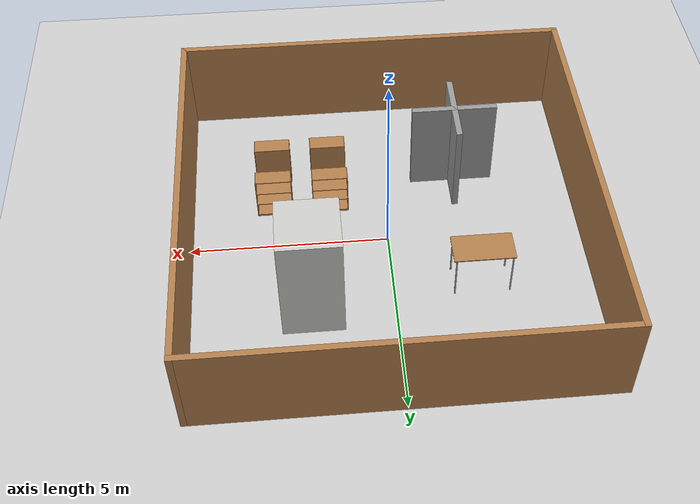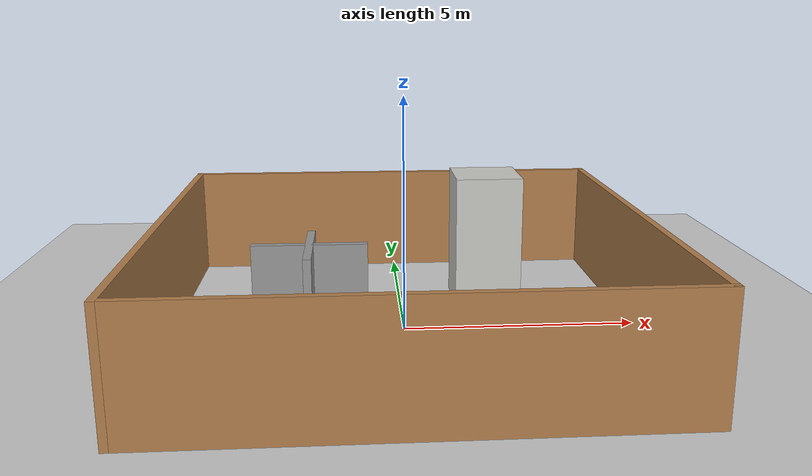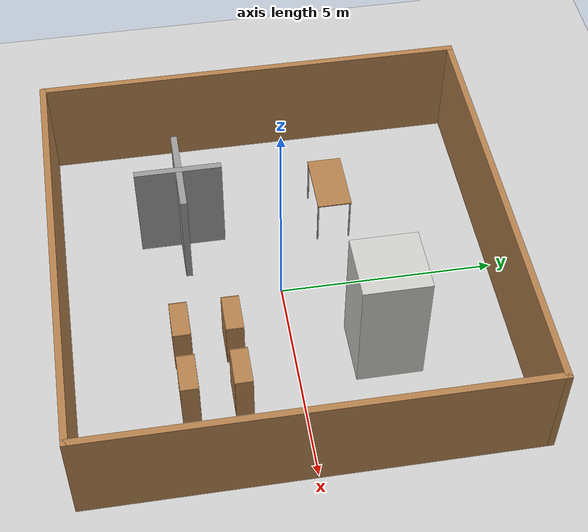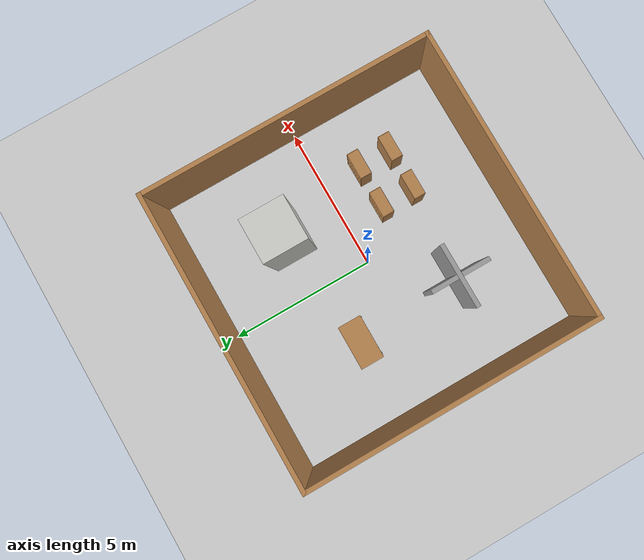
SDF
<sdf version="1.7">
 <world name="default">
  <light name="sun" type="directional">
   <pose>0 0 10 0 -0 0</pose>
   <diffuse>0.8 0.8 0.8 1</diffuse>
   <specular>0.2 0.2 0.2 1</specular>
   <attenuation>
    <range>1000</range>
    <constant>0.9</constant>
    <linear>0.01</linear>
    <quadratic>0.001</quadratic>
   </attenuation>
   <direction>-0.5 0.1 -0.9</direction>
   <spot><inner_angle>0</inner_angle><outer_angle>0</outer_angle><falloff>0</falloff></spot>
  </light>
  <model name="ground_plane">
   <static>1</static>
   <link name="link">
    <collision name="collision">
     <geometry><plane><normal>0 0 1</normal><size>100 100</size></plane></geometry>
     <surface><friction><ode><mu>100</mu><mu2>50</mu2></ode></friction></surface>
    </collision>
    <visual name="visual">
     <cast_shadows>0</cast_shadows>
     <geometry><plane><normal>0 0 1</normal><size>100 100</size></plane></geometry>
     <material>
      <script><uri>file://media/materials/scripts/gazebo.material</uri><name>Gazebo/Grey</name></script>
     </material>
    </visual>
   </link>
  </model>
  <gravity>0 0 -9.8</gravity>
  <magnetic_field>6e-06 2.3e-05 -4.2e-05</magnetic_field>
  <atmosphere type="adiabatic"/>
  <physics name="default_physics" default="0" type="ode">
   <max_step_size>0.001</max_step_size>
   <real_time_factor>1</real_time_factor>
   <real_time_update_rate>1000</real_time_update_rate>
  </physics>
  <scene><ambient>0.4 0.4 0.4 1</ambient><background>0.7 0.7 0.7 1</background><shadows>1</shadows></scene>
  <spherical_coordinates>
   <surface_model>EARTH_WGS84</surface_model>
   <latitude_deg>0</latitude_deg>
   <longitude_deg>0</longitude_deg>
   <elevation>0</elevation>
   <heading_deg>0</heading_deg>
  </spherical_coordinates>
  <model name="unit_box">
   <link name="link">
    <inertial>
     <mass>1</mass>
     <inertia>
      <ixx>0.166667</ixx>
      <ixy>0</ixy>
      <ixz>0</ixz>
      <iyy>0.166667</iyy>
      <iyz>0</iyz>
      <izz>0.166667</izz>
     </inertia>
    </inertial>
    <visual name="visual">
     <geometry><box><size>1.5 1.5 3</size></box></geometry>
     <material>
      <script><name>Gazebo/CeilingTiled</name><uri>file://media/materials/scripts/gazebo.material</uri></script>
      <shader type="pixel"><normal_map>__default__</normal_map></shader>
      <ambient>0.3 0.3 0.3 1</ambient>
      <diffuse>0.7 0.7 0.7 1</diffuse>
      <specular>0.01 0.01 0.01 1</specular>
      <emissive>0 0 0 1</emissive>
     </material>
    </visual>
    <collision name="collision">
     <geometry><box><size>1.5 1.5 3</size></box></geometry>
     <surface>
      <friction>
       <ode><mu>1</mu><mu2>1</mu2><fdir1>0 0 0</fdir1><slip1>0</slip1><slip2>0</slip2></ode>
       <torsional>
        <coefficient>1</coefficient>
        <patch_radius>0</patch_radius>
        <surface_radius>0</surface_radius>
        <use_patch_radius>1</use_patch_radius>
        <ode><slip>0</slip></ode>
       </torsional>
      </friction>
      <bounce><restitution_coefficient>0</restitution_coefficient><threshold>1e+06</threshold></bounce>
      <contact>
       <collide_without_contact>0</collide_without_contact>
       <collide_without_contact_bitmask>1</collide_without_contact_bitmask>
       <collide_bitmask>1</collide_bitmask>
       <ode>
        <soft_cfm>0</soft_cfm>
        <soft_erp>0.2</soft_erp>
        <kp>1e+13</kp>
        <kd>1</kd>
        <max_vel>0.01</max_vel>
        <min_depth>0</min_depth>
       </ode>
       <bullet>
        <split_impulse>1</split_impulse>
        <split_impulse_penetration_threshold>-0.01</split_impulse_penetration_threshold>
        <soft_cfm>0</soft_cfm>
        <soft_erp>0.2</soft_erp>
        <kp>1e+13</kp>
        <kd>1</kd>
       </bullet>
      </contact>
     </surface>
    </collision>
   </link>
   <static>0</static>
   <pose>1.99977 2.00001 1.5 -2e-06 -0 0.000239</pose>
  </model>
  <model name="table">
   <static>1</static>
   <link name="link">
    <collision name="surface">
     <pose>0 0 1.2 0 -0 0</pose>
     <geometry><box><size>1.5 0.8 0.03</size></box></geometry>
    </collision>
    <visual name="visual1">
     <pose>0 0 1.2 0 -0 0</pose>
     <geometry><box><size>1.5 0.8 0.03</size></box></geometry>
     <material>
      <script><uri>file://media/materials/scripts/gazebo.material</uri><name>Gazebo/Wood</name></script>
     </material>
    </visual>
    <collision name="front_left_leg">
     <pose>0.68 0.38 0.6 0 -0 0</pose>
     <geometry><cylinder><radius>0.02</radius><length>1.2</length></cylinder></geometry>
    </collision>
    <visual name="front_left_leg">
     <pose>0.68 0.38 0.6 0 -0 0</pose>
     <geometry><cylinder><radius>0.02</radius><length>1.2</length></cylinder></geometry>
     <material>
      <script><uri>file://media/materials/scripts/gazebo.material</uri><name>Gazebo/Grey</name></script>
     </material>
    </visual>
    <collision name="front_right_leg">
     <pose>0.68 -0.38 0.6 0 -0 0</pose>
     <geometry><cylinder><radius>0.02</radius><length>1.2</length></cylinder></geometry>
    </collision>
    <visual name="front_right_leg">
     <pose>0.68 -0.38 0.6 0 -0 0</pose>
     <geometry><cylinder><radius>0.02</radius><length>1.2</length></cylinder></geometry>
     <material>
      <script><uri>file://media/materials/scripts/gazebo.material</uri><name>Gazebo/Grey</name></script>
     </material>
    </visual>
    <collision name="back_right_leg">
     <pose>-0.68 -0.38 0.6 0 -0 0</pose>
     <geometry><cylinder><radius>0.02</radius><length>1.2</length></cylinder></geometry>
    </collision>
    <visual name="back_right_leg">
     <pose>-0.68 -0.38 0.6 0 -0 0</pose>
     <geometry><cylinder><radius>0.02</radius><length>1.2</length></cylinder></geometry>
     <material>
      <script><uri>file://media/materials/scripts/gazebo.material</uri><name>Gazebo/Grey</name></script>
     </material>
    </visual>
    <collision name="back_left_leg">
     <pose>-0.68 0.38 0.6 0 -0 0</pose>
     <geometry><cylinder><radius>0.02</radius><length>1.2</length></cylinder></geometry>
    </collision>
    <visual name="back_left_leg">
     <pose>-0.68 0.38 0.6 0 -0 0</pose>
     <geometry><cylinder><radius>0.02</radius><length>1.2</length></cylinder></geometry>
     <material>
      <script><uri>file://media/materials/scripts/gazebo.material</uri><name>Gazebo/Grey</name></script>
     </material>
    </visual>
   </link>
   <pose>-2.14903 1.49703 0 0 -0 0</pose>
  </model>
  <model name="bookshelf_1">
   <static>1</static>
   <link name="link">
    <inertial><mass>1</mass></inertial>
    <collision name="back">
     <pose>0 0.005 0.6 0 -0 0</pose>
     <geometry><box><size>0.9 0.01 1.2</size></box></geometry>
    </collision>
    <visual name="visual1">
     <pose>0 0.005 0.6 0 -0 0</pose>
     <geometry><box><size>0.9 0.01 1.2</size></box></geometry>
     <material>
      <script><uri>file://media/materials/scripts/gazebo.material</uri><name>Gazebo/Wood</name></script>
     </material>
    </visual>
    <collision name="left_side">
     <pose>0.45 -0.195 0.6 0 -0 0</pose>
     <geometry><box><size>0.02 0.4 1.2</size></box></geometry>
    </collision>
    <visual name="visual2">
     <pose>0.45 -0.195 0.6 0 -0 0</pose>
     <geometry><box><size>0.02 0.4 1.2</size></box></geometry>
     <material>
      <script><uri>file://media/materials/scripts/gazebo.material</uri><name>Gazebo/Wood</name></script>
     </material>
    </visual>
    <collision name="right_side">
     <pose>-0.45 -0.195 0.6 0 -0 0</pose>
     <geometry><box><size>0.02 0.4 1.2</size></box></geometry>
    </collision>
    <visual name="visual3">
     <pose>-0.45 -0.195 0.6 0 -0 0</pose>
     <geometry><box><size>0.02 0.4 1.2</size></box></geometry>
     <material>
      <script><uri>file://media/materials/scripts/gazebo.material</uri><name>Gazebo/Wood</name></script>
     </material>
    </visual>
    <collision name="bottom">
     <pose>0 -0.195 0.03 0 -0 0</pose>
     <geometry><box><size>0.88 0.4 0.06</size></box></geometry>
    </collision>
    <visual name="visual4">
     <pose>0 -0.195 0.03 0 -0 0</pose>
     <geometry><box><size>0.88 0.4 0.06</size></box></geometry>
     <material>
      <script><uri>file://media/materials/scripts/gazebo.material</uri><name>Gazebo/Wood</name></script>
     </material>
    </visual>
    <collision name="top">
     <pose>0 -0.195 1.19 0 -0 0</pose>
     <geometry><box><size>0.88 0.4 0.02</size></box></geometry>
    </collision>
    <visual name="visual5">
     <pose>0 -0.195 1.19 0 -0 0</pose>
     <geometry><box><size>0.88 0.4 0.02</size></box></geometry>
     <material>
      <script><uri>file://media/materials/scripts/gazebo.material</uri><name>Gazebo/Wood</name></script>
     </material>
    </visual>
    <collision name="low_shelf">
     <pose>0 -0.195 0.43 0 -0 0</pose>
     <geometry><box><size>0.88 0.4 0.02</size></box></geometry>
    </collision>
    <visual name="visual6">
     <pose>0 -0.195 0.43 0 -0 0</pose>
     <geometry><box><size>0.88 0.4 0.02</size></box></geometry>
     <material>
      <script><uri>file://media/materials/scripts/gazebo.material</uri><name>Gazebo/Wood</name></script>
     </material>
    </visual>
    <collision name="high_shelf">
     <pose>0 -0.195 0.8 0 -0 0</pose>
     <geometry><box><size>0.88 0.4 0.02</size></box></geometry>
    </collision>
    <visual name="visual7">
     <pose>0 -0.195 0.8 0 -0 0</pose>
     <geometry><box><size>0.88 0.4 0.02</size></box></geometry>
     <material>
      <script><uri>file://media/materials/scripts/gazebo.material</uri><name>Gazebo/Wood</name></script>
     </material>
    </visual>
   </link>
   <pose>1.37861 -2.2748 0 0 -0 0</pose>
  </model>
  <model name="bookshelf_2">
   <static>1</static>
   <link name="link">
    <inertial><mass>1</mass></inertial>
    <collision name="back">
     <pose>0 0.005 0.6 0 -0 0</pose>
     <geometry><box><size>0.9 0.01 1.2</size></box></geometry>
    </collision>
    <visual name="visual1">
     <pose>0 0.005 0.6 0 -0 0</pose>
     <geometry><box><size>0.9 0.01 1.2</size></box></geometry>
     <material>
      <script><uri>file://media/materials/scripts/gazebo.material</uri><name>Gazebo/Wood</name></script>
     </material>
    </visual>
    <collision name="left_side">
     <pose>0.45 -0.195 0.6 0 -0 0</pose>
     <geometry><box><size>0.02 0.4 1.2</size></box></geometry>
    </collision>
    <visual name="visual2">
     <pose>0.45 -0.195 0.6 0 -0 0</pose>
     <geometry><box><size>0.02 0.4 1.2</size></box></geometry>
     <material>
      <script><uri>file://media/materials/scripts/gazebo.material</uri><name>Gazebo/Wood</name></script>
     </material>
    </visual>
    <collision name="right_side">
     <pose>-0.45 -0.195 0.6 0 -0 0</pose>
     <geometry><box><size>0.02 0.4 1.2</size></box></geometry>
    </collision>
    <visual name="visual3">
     <pose>-0.45 -0.195 0.6 0 -0 0</pose>
     <geometry><box><size>0.02 0.4 1.2</size></box></geometry>
     <material>
      <script><uri>file://media/materials/scripts/gazebo.material</uri><name>Gazebo/Wood</name></script>
     </material>
    </visual>
    <collision name="bottom">
     <pose>0 -0.195 0.03 0 -0 0</pose>
     <geometry><box><size>0.88 0.4 0.06</size></box></geometry>
    </collision>
    <visual name="visual4">
     <pose>0 -0.195 0.03 0 -0 0</pose>
     <geometry><box><size>0.88 0.4 0.06</size></box></geometry>
     <material>
      <script><uri>file://media/materials/scripts/gazebo.material</uri><name>Gazebo/Wood</name></script>
     </material>
    </visual>
    <collision name="top">
     <pose>0 -0.195 1.19 0 -0 0</pose>
     <geometry><box><size>0.88 0.4 0.02</size></box></geometry>
    </collision>
    <visual name="visual5">
     <pose>0 -0.195 1.19 0 -0 0</pose>
     <geometry><box><size>0.88 0.4 0.02</size></box></geometry>
     <material>
      <script><uri>file://media/materials/scripts/gazebo.material</uri><name>Gazebo/Wood</name></script>
     </material>
    </visual>
    <collision name="low_shelf">
     <pose>0 -0.195 0.43 0 -0 0</pose>
     <geometry><box><size>0.88 0.4 0.02</size></box></geometry>
    </collision>
    <visual name="visual6">
     <pose>0 -0.195 0.43 0 -0 0</pose>
     <geometry><box><size>0.88 0.4 0.02</size></box></geometry>
     <material>
      <script><uri>file://media/materials/scripts/gazebo.material</uri><name>Gazebo/Wood</name></script>
     </material>
    </visual>
    <collision name="high_shelf">
     <pose>0 -0.195 0.8 0 -0 0</pose>
     <geometry><box><size>0.88 0.4 0.02</size></box></geometry>
    </collision>
    <visual name="visual7">
     <pose>0 -0.195 0.8 0 -0 0</pose>
     <geometry><box><size>0.88 0.4 0.02</size></box></geometry>
     <material>
      <script><uri>file://media/materials/scripts/gazebo.material</uri><name>Gazebo/Wood</name></script>
     </material>
    </visual>
   </link>
   <pose>2.81578 -2.26675 0 0 -0 0</pose>
  </model>
  <model name="bookshelf_3">
   <static>1</static>
   <link name="link">
    <inertial><mass>1</mass></inertial>
    <collision name="back">
     <pose>0 0.005 0.6 0 -0 0</pose>
     <geometry><box><size>0.9 0.01 1.2</size></box></geometry>
    </collision>
    <visual name="visual1">
     <pose>0 0.005 0.6 0 -0 0</pose>
     <geometry><box><size>0.9 0.01 1.2</size></box></geometry>
     <material>
      <script><uri>file://media/materials/scripts/gazebo.material</uri><name>Gazebo/Wood</name></script>
     </material>
    </visual>
    <collision name="left_side">
     <pose>0.45 -0.195 0.6 0 -0 0</pose>
     <geometry><box><size>0.02 0.4 1.2</size></box></geometry>
    </collision>
    <visual name="visual2">
     <pose>0.45 -0.195 0.6 0 -0 0</pose>
     <geometry><box><size>0.02 0.4 1.2</size></box></geometry>
     <material>
      <script><uri>file://media/materials/scripts/gazebo.material</uri><name>Gazebo/Wood</name></script>
     </material>
    </visual>
    <collision name="right_side">
     <pose>-0.45 -0.195 0.6 0 -0 0</pose>
     <geometry><box><size>0.02 0.4 1.2</size></box></geometry>
    </collision>
    <visual name="visual3">
     <pose>-0.45 -0.195 0.6 0 -0 0</pose>
     <geometry><box><size>0.02 0.4 1.2</size></box></geometry>
     <material>
      <script><uri>file://media/materials/scripts/gazebo.material</uri><name>Gazebo/Wood</name></script>
     </material>
    </visual>
    <collision name="bottom">
     <pose>0 -0.195 0.03 0 -0 0</pose>
     <geometry><box><size>0.88 0.4 0.06</size></box></geometry>
    </collision>
    <visual name="visual4">
     <pose>0 -0.195 0.03 0 -0 0</pose>
     <geometry><box><size>0.88 0.4 0.06</size></box></geometry>
     <material>
      <script><uri>file://media/materials/scripts/gazebo.material</uri><name>Gazebo/Wood</name></script>
     </material>
    </visual>
    <collision name="top">
     <pose>0 -0.195 1.19 0 -0 0</pose>
     <geometry><box><size>0.88 0.4 0.02</size></box></geometry>
    </collision>
    <visual name="visual5">
     <pose>0 -0.195 1.19 0 -0 0</pose>
     <geometry><box><size>0.88 0.4 0.02</size></box></geometry>
     <material>
      <script><uri>file://media/materials/scripts/gazebo.material</uri><name>Gazebo/Wood</name></script>
     </material>
    </visual>
    <collision name="low_shelf">
     <pose>0 -0.195 0.43 0 -0 0</pose>
     <geometry><box><size>0.88 0.4 0.02</size></box></geometry>
    </collision>
    <visual name="visual6">
     <pose>0 -0.195 0.43 0 -0 0</pose>
     <geometry><box><size>0.88 0.4 0.02</size></box></geometry>
     <material>
      <script><uri>file://media/materials/scripts/gazebo.material</uri><name>Gazebo/Wood</name></script>
     </material>
    </visual>
    <collision name="high_shelf">
     <pose>0 -0.195 0.8 0 -0 0</pose>
     <geometry><box><size>0.88 0.4 0.02</size></box></geometry>
    </collision>
    <visual name="visual7">
     <pose>0 -0.195 0.8 0 -0 0</pose>
     <geometry><box><size>0.88 0.4 0.02</size></box></geometry>
     <material>
      <script><uri>file://media/materials/scripts/gazebo.material</uri><name>Gazebo/Wood</name></script>
     </material>
    </visual>
   </link>
   <pose>1.37828 -1.5 0 0 -0 3.14</pose>
  </model>
  <model name="bookshelf_4">
   <static>1</static>
   <link name="link">
    <inertial><mass>1</mass></inertial>
    <collision name="back">
     <pose>0 0.005 0.6 0 -0 0</pose>
     <geometry><box><size>0.9 0.01 1.2</size></box></geometry>
    </collision>
    <visual name="visual1">
     <pose>0 0.005 0.6 0 -0 0</pose>
     <geometry><box><size>0.9 0.01 1.2</size></box></geometry>
     <material>
      <script><uri>file://media/materials/scripts/gazebo.material</uri><name>Gazebo/Wood</name></script>
     </material>
    </visual>
    <collision name="left_side">
     <pose>0.45 -0.195 0.6 0 -0 0</pose>
     <geometry><box><size>0.02 0.4 1.2</size></box></geometry>
    </collision>
    <visual name="visual2">
     <pose>0.45 -0.195 0.6 0 -0 0</pose>
     <geometry><box><size>0.02 0.4 1.2</size></box></geometry>
     <material>
      <script><uri>file://media/materials/scripts/gazebo.material</uri><name>Gazebo/Wood</name></script>
     </material>
    </visual>
    <collision name="right_side">
     <pose>-0.45 -0.195 0.6 0 -0 0</pose>
     <geometry><box><size>0.02 0.4 1.2</size></box></geometry>
    </collision>
    <visual name="visual3">
     <pose>-0.45 -0.195 0.6 0 -0 0</pose>
     <geometry><box><size>0.02 0.4 1.2</size></box></geometry>
     <material>
      <script><uri>file://media/materials/scripts/gazebo.material</uri><name>Gazebo/Wood</name></script>
     </material>
    </visual>
    <collision name="bottom">
     <pose>0 -0.195 0.03 0 -0 0</pose>
     <geometry><box><size>0.88 0.4 0.06</size></box></geometry>
    </collision>
    <visual name="visual4">
     <pose>0 -0.195 0.03 0 -0 0</pose>
     <geometry><box><size>0.88 0.4 0.06</size></box></geometry>
     <material>
      <script><uri>file://media/materials/scripts/gazebo.material</uri><name>Gazebo/Wood</name></script>
     </material>
    </visual>
    <collision name="top">
     <pose>0 -0.195 1.19 0 -0 0</pose>
     <geometry><box><size>0.88 0.4 0.02</size></box></geometry>
    </collision>
    <visual name="visual5">
     <pose>0 -0.195 1.19 0 -0 0</pose>
     <geometry><box><size>0.88 0.4 0.02</size></box></geometry>
     <material>
      <script><uri>file://media/materials/scripts/gazebo.material</uri><name>Gazebo/Wood</name></script>
     </material>
    </visual>
    <collision name="low_shelf">
     <pose>0 -0.195 0.43 0 -0 0</pose>
     <geometry><box><size>0.88 0.4 0.02</size></box></geometry>
    </collision>
    <visual name="visual6">
     <pose>0 -0.195 0.43 0 -0 0</pose>
     <geometry><box><size>0.88 0.4 0.02</size></box></geometry>
     <material>
      <script><uri>file://media/materials/scripts/gazebo.material</uri><name>Gazebo/Wood</name></script>
     </material>
    </visual>
    <collision name="high_shelf">
     <pose>0 -0.195 0.8 0 -0 0</pose>
     <geometry><box><size>0.88 0.4 0.02</size></box></geometry>
    </collision>
    <visual name="visual7">
     <pose>0 -0.195 0.8 0 -0 0</pose>
     <geometry><box><size>0.88 0.4 0.02</size></box></geometry>
     <material>
      <script><uri>file://media/materials/scripts/gazebo.material</uri><name>Gazebo/Wood</name></script>
     </material>
    </visual>
   </link>
   <pose>2.81545 -1.5 0 0 -0 3.14</pose>
  </model>
  <model name="Untitled10*10">
   <link name="Wall_1">
    <collision name="Wall_1_Collision">
     <geometry><box><size>10.15 0.15 2.5</size></box></geometry>
     <pose>0 0 1.25 0 -0 0</pose>
    </collision>
    <visual name="Wall_1_Visual">
     <pose>0 0 1.25 0 -0 0</pose>
     <geometry><box><size>10.15 0.15 2.5</size></box></geometry>
     <material>
      <script><uri>file://media/materials/scripts/gazebo.material</uri><name>Gazebo/Wood</name></script>
      <ambient>1 1 1 1</ambient>
     </material>
     <meta><layer>0</layer></meta>
    </visual>
    <pose>-5 0 0 0 -0 -1.5708</pose>
   </link>
   <link name="Wall_2">
    <collision name="Wall_2_Collision">
     <geometry><box><size>10.15 0.15 2.5</size></box></geometry>
     <pose>0 0 1.25 0 -0 0</pose>
    </collision>
    <visual name="Wall_2_Visual">
     <pose>0 0 1.25 0 -0 0</pose>
     <geometry><box><size>10.15 0.15 2.5</size></box></geometry>
     <material>
      <script><uri>file://media/materials/scripts/gazebo.material</uri><name>Gazebo/Wood</name></script>
      <ambient>1 1 1 1</ambient>
     </material>
     <meta><layer>0</layer></meta>
    </visual>
    <pose>0 -5 0 0 -0 0</pose>
   </link>
   <link name="Wall_3">
    <collision name="Wall_3_Collision">
     <geometry><box><size>10.15 0.15 2.5</size></box></geometry>
     <pose>0 0 1.25 0 -0 0</pose>
    </collision>
    <visual name="Wall_3_Visual">
     <pose>0 0 1.25 0 -0 0</pose>
     <geometry><box><size>10.15 0.15 2.5</size></box></geometry>
     <material>
      <script><uri>file://media/materials/scripts/gazebo.material</uri><name>Gazebo/Wood</name></script>
      <ambient>1 1 1 1</ambient>
     </material>
     <meta><layer>0</layer></meta>
    </visual>
    <pose>5 0 0 0 -0 1.5708</pose>
   </link>
   <link name="Wall_4">
    <collision name="Wall_4_Collision">
     <geometry><box><size>10.15 0.15 2.5</size></box></geometry>
     <pose>0 0 1.25 0 -0 0</pose>
    </collision>
    <visual name="Wall_4_Visual">
     <pose>0 0 1.25 0 -0 0</pose>
     <geometry><box><size>10.15 0.15 2.5</size></box></geometry>
     <material>
      <script><uri>file://media/materials/scripts/gazebo.material</uri><name>Gazebo/Wood</name></script>
      <ambient>1 1 1 1</ambient>
     </material>
     <meta><layer>0</layer></meta>
    </visual>
    <pose>0 5 0 0 -0 3.14159</pose>
   </link>
   <static>1</static>
  </model>
  <model name="2*2">
   <pose>-0.909792 -2.08706 0 0 -0 0</pose>
   <link name="Wall_11">
    <collision name="Wall_11_Collision">
     <geometry><box><size>2.15 0.15 2.5</size></box></geometry>
     <pose>0 0 1.25 0 -0 0</pose>
    </collision>
    <visual name="Wall_11_Visual">
     <pose>0 0 1.25 0 -0 0</pose>
     <geometry><box><size>2.15 0.15 2.5</size></box></geometry>
     <material>
      <script><uri>file://media/materials/scripts/gazebo.material</uri><name>Gazebo/Grey</name></script>
      <ambient>1 1 1 1</ambient>
     </material>
     <meta><layer>0</layer></meta>
    </visual>
    <pose>-0.9625 0.022 0 0 -0 0</pose>
   </link>
   <link name="Wall_13">
    <collision name="Wall_13_Collision">
     <geometry><box><size>2 0.15 2.5</size></box></geometry>
     <pose>0 0 1.25 0 -0 0</pose>
    </collision>
    <visual name="Wall_13_Visual">
     <pose>0 0 1.25 0 -0 0</pose>
     <geometry><box><size>2 0.15 2.5</size></box></geometry>
     <material>
      <script><uri>file://media/materials/scripts/gazebo.material</uri><name>Gazebo/Grey</name></script>
      <ambient>1 1 1 1</ambient>
     </material>
     <meta><layer>0</layer></meta>
    </visual>
    <pose>-0.9625 0 0 0 -0 -1.5708</pose>
   </link>
   <static>1</static>
  </model>
 </world>
</sdf>
